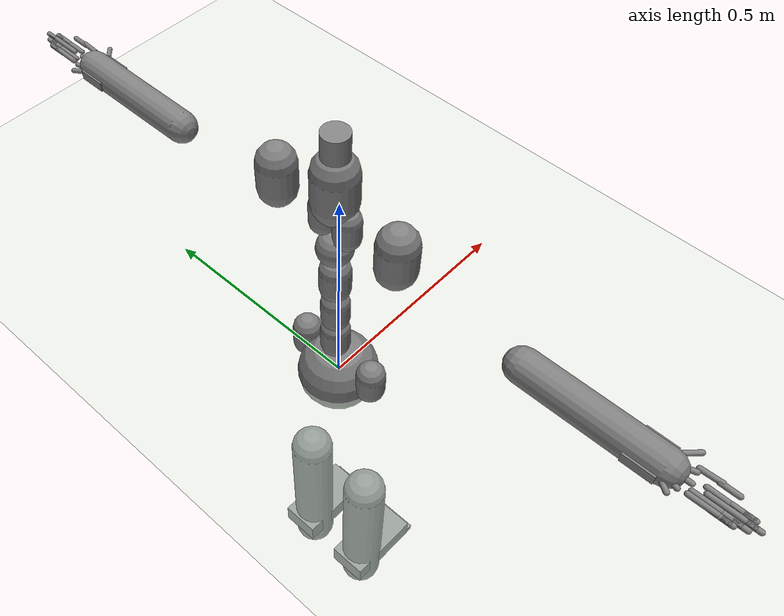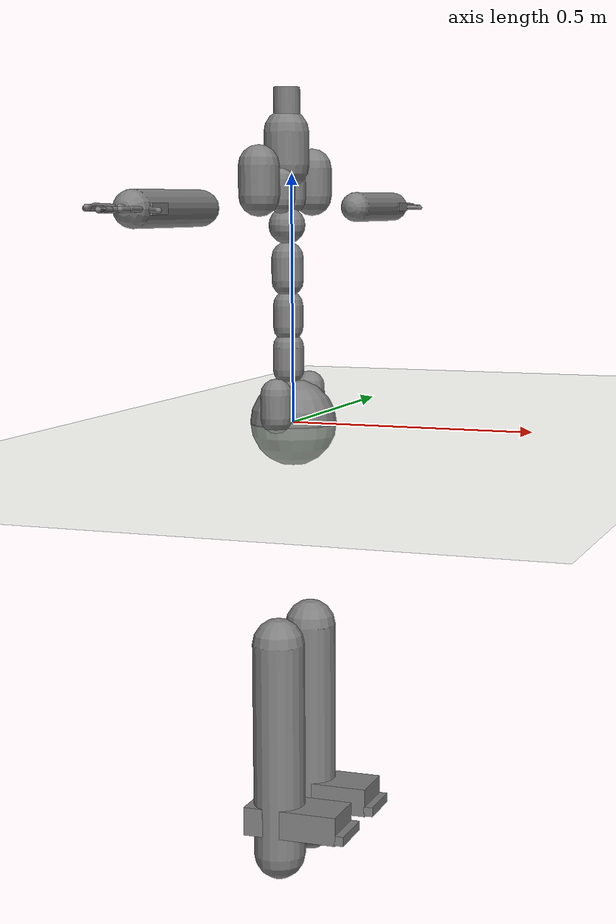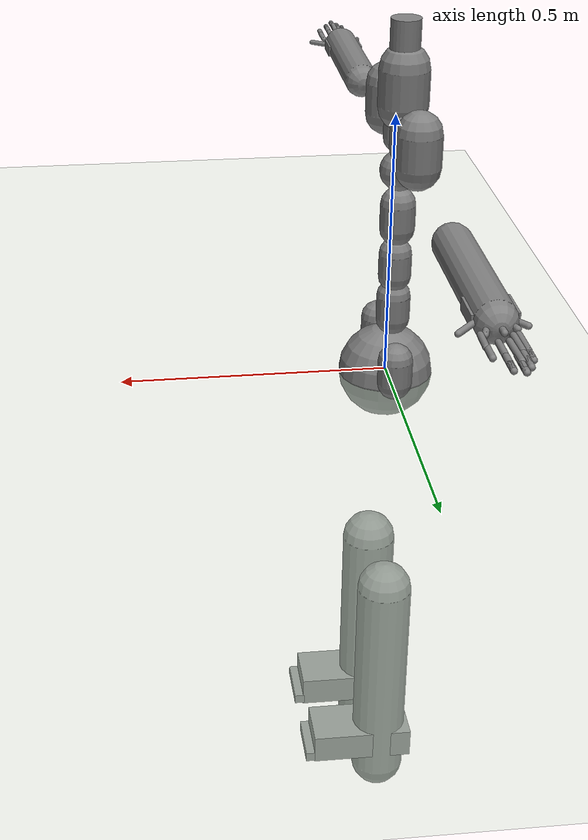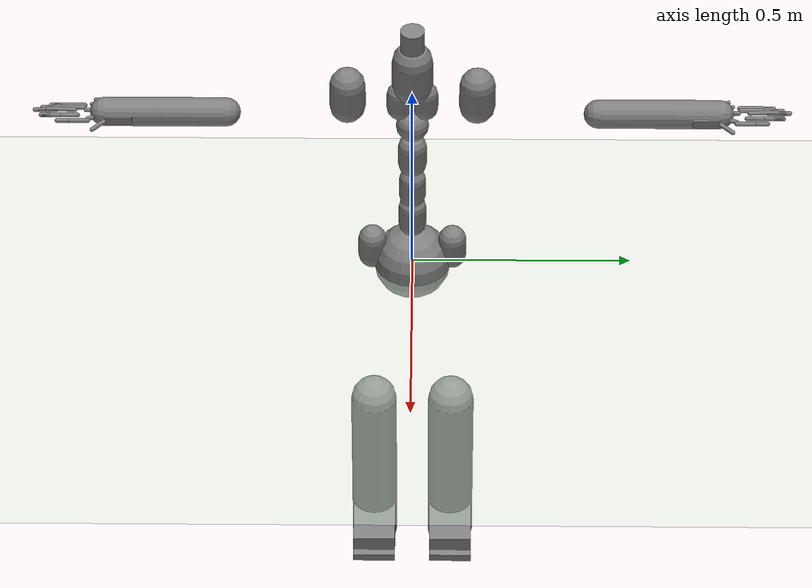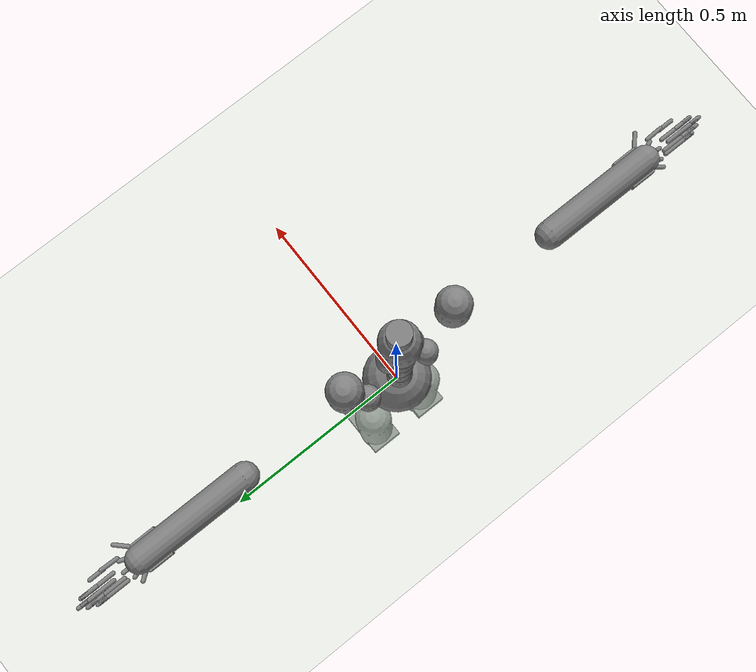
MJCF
<?xml version="1.0" ?>
<mujoco model="humanoid">
  <compiler coordinate="local"/>
  <statistic extent="2" center="0 0 1"/>
  <option timestep="0.00555"/>
  <default>
    <motor ctrlrange="-1 1" ctrllimited="true"/>
    <geom type="capsule" condim="1" friction="1.0 0.05 0.05" solimp=".9 .99 .003" solref=".015 1"/>
    <joint type="hinge" damping="0.1" stiffness="5" armature=".007" limited="true" solimplimit="0 .99 .01"/>
    <site size=".04" group="3"/>
  </default>
  <asset>
    <texture type="skybox" builtin="gradient" rgb1=".4 .5 .6" rgb2="0 0 0" width="100" height="100"/>
    <texture builtin="flat" height="1278" mark="cross" markrgb="1 1 1" name="texgeom" random="0.01" rgb1="0.8 0.6 0.4" rgb2="0.8 0.6 0.4" type="cube" width="127"/>
    <texture builtin="checker" height="100" name="texplane" rgb1="0 0 0" rgb2="0.8 0.8 0.8" type="2d" width="100"/>
    <material name="MatPlane" reflectance="0.5" shininess="1" specular="1" texrepeat="60 60" texture="texplane"/>
    <material name="geom" texture="texgeom" texuniform="true"/>
  </asset>
  <worldbody>
    <light cutoff="100" diffuse="1 1 1" dir="-0 0 -1.3" directional="true" exponent="1" pos="0 0 1.3" specular=".1 .1 .1"/>
    <geom conaffinity="1" condim="3" name="floor" pos="0 0 0" rgba="0.8 0.9 0.8 1" size="100 100 .2" type="plane" material="MatPlane"/>
    <body name="pHipOrigin" pos="0 0 0">
      <freejoint name="pHipOrigin"/>
      <geom type="sphere" contype="1" conaffinity="1" density="4629.6296296296305" size="0.08836" pos="0.0000 0.0000 -0.0000"/>
      <body name="jL5S1" pos="-0.00995742 0 0.08961650">
        <geom type="capsule" contype="1" conaffinity="1" density="1000" fromto="0 0 0.01803 0 0 0.06312" size="0.03156"/>
        <joint name="jL5S1_x" type="hinge" pos="0 0 0" axis="1 0 0" stiffness="500" damping="500" armature="0.02" range="-180.0000 180.0000"/>
        <joint name="jL5S1_y" type="hinge" pos="0 0 0" axis="0 1 0" stiffness="500" damping="500" armature="0.02" range="-180.0000 180.0000"/>
        <joint name="jL5S1_z" type="hinge" pos="0 0 0" axis="0 0 1" stiffness="500" damping="500" armature="0.02" range="-180.0000 180.0000"/>
        <body name="jL4L3" pos="0 0 0.08688753">
          <geom type="capsule" contype="1" conaffinity="1" density="1000" fromto="0 0 0.01738 0 0 0.06082" size="0.03041"/>
          <joint name="jL4L3_x" type="hinge" pos="0 0 0" axis="1 0 0" stiffness="500" damping="500" armature="0.02" range="-180.0000 180.0000"/>
          <joint name="jL4L3_y" type="hinge" pos="0 0 0" axis="0 1 0" stiffness="500" damping="500" armature="0.02" range="-180.0000 180.0000"/>
          <joint name="jL4L3_z" type="hinge" pos="0 0 0" axis="0 0 1" stiffness="500" damping="500" armature="0.02" range="-180.0000 180.0000"/>
          <body name="jL1T12" pos="-0.00071179 0 0.09226121">
            <geom type="capsule" contype="1" conaffinity="1" density="1000" fromto="0 0 0.01845 0 0 0.06458" size="0.03229"/>
            <joint name="jL1T12_x" type="hinge" pos="0 0 0" axis="1 0 0" stiffness="500" damping="500" armature="0.02" range="-180.0000 180.0000"/>
            <joint name="jL1T12_y" type="hinge" pos="0 0 0" axis="0 1 0" stiffness="500" damping="500" armature="0.02" range="-180.0000 180.0000"/>
            <joint name="jL1T12_z" type="hinge" pos="0 0 0" axis="0 0 1" stiffness="500" damping="500" armature="0.02" range="-180.0000 180.0000"/>
            <body name="jT9T8" pos="-0.00071162 0 0.09205923">
              <geom type="sphere" contype="1" conaffinity="1" density="1000" size="0.03682" pos="0.000 0.0000 0.036825"/>
              <joint name="jT9T8_x" type="hinge" pos="0 0 0" axis="1 0 0" stiffness="500" damping="500" armature="0.02" range="-180.0000 180.0000"/>
              <joint name="jT9T8_y" type="hinge" pos="0 0 0" axis="0 1 0" stiffness="500" damping="500" armature="0.02" range="-180.0000 180.0000"/>
              <joint name="jT9T8_z" type="hinge" pos="0 0 0" axis="0 0 1" stiffness="500" damping="500" armature="0.02" range="-180.0000 180.0000"/>
              <body name="jT1C7" pos="0 0 0.12971902">
                <geom type="capsule" contype="1" conaffinity="1" density="1000" fromto="0 0 0.02594 0 0 0.09080" size="0.04540"/>
                <joint name="jT1C7_x" type="hinge" pos="0 0 0" axis="1 0 0" stiffness="500" damping="500" armature="0.02" range="-180.0000 180.0000"/>
                <joint name="jT1C7_y" type="hinge" pos="0 0 0" axis="0 1 0" stiffness="500" damping="500" armature="0.02" range="-180.0000 180.0000"/>
                <joint name="jT1C7_z" type="hinge" pos="0 0 0" axis="0 0 1" stiffness="500" damping="500" armature="0.02" range="-180.0000 180.0000"/>
                <body name="jC1Head" pos="0.00105256 0 0.08921773">
                  <geom type="cylinder" contype="1" conaffinity="1" density="1000" fromto="0 0 0 0 0 0.08922" size="0.02677"/>
                  <joint name="jC1Head_x" type="hinge" pos="0 0 0" axis="1 0 0" stiffness="500" damping="500" armature="0.02" range="-180.0000 180.0000"/>
                  <joint name="jC1Head_y" type="hinge" pos="0 0 0" axis="0 1 0" stiffness="500" damping="500" armature="0.02" range="-180.0000 180.0000"/>
                  <joint name="jC1Head_z" type="hinge" pos="0 0 0" axis="0 0 1" stiffness="500" damping="500" armature="0.02" range="-180.0000 180.0000"/>
                </body>
              </body>
              <body name="jRightT4Shoulder" pos="0 -0.02967497 0.07235408">
                <geom type="capsule" contype="1" conaffinity="1" density="1000" fromto="0 0 0.01564 0 0 0.05474" size="0.02737"/>
                <joint name="jRightT4Shoulder_x" type="hinge" pos="0 0 0" axis="1 0 0" stiffness="500" damping="500" armature="0.02" range="-180.0000 180.0000"/>
                <joint name="jRightT4Shoulder_y" type="hinge" pos="0 0 0" axis="0 1 0" stiffness="500" damping="500" armature="0.02" range="-180.0000 180.0000"/>
                <joint name="jRightT4Shoulder_z" type="hinge" pos="0 0 0" axis="0 0 1" stiffness="500" damping="500" armature="0.02" range="-180.0000 180.0000"/>
                <body name="jRightShoulder" pos="0 -0.11446586 0">
                  <geom type="capsule" contype="1" conaffinity="1" density="1000" fromto="0 0 0.02289 0 0 0.08013" size="0.04006"/>
                  <joint name="jRightShoulder_x" type="hinge" pos="0 0 0" axis="1 0 0" stiffness="500" damping="500" armature="0.02" range="-180.0000 180.0000"/>
                  <joint name="jRightShoulder_y" type="hinge" pos="0 0 0" axis="0 1 0" stiffness="500" damping="500" armature="0.02" range="-180.0000 180.0000"/>
                  <joint name="jRightShoulder_z" type="hinge" pos="0 0 0" axis="0 0 1" stiffness="500" damping="500" armature="0.02" range="-180.0000 180.0000"/>
                  <body name="jRightElbow" pos="0 -0.27079919 0">
                    <geom type="capsule" contype="1" conaffinity="1" density="1000" fromto="0 0 0 0.00000000 -0.27079919 0.00000000" size="0.03250"/>
                    <joint name="jRightElbow_x" type="hinge" pos="0 0 0" axis="1 0 0" stiffness="500" damping="500" armature="0.02" range="-180.0000 180.0000"/>
                    <joint name="jRightElbow_y" type="hinge" pos="0 0 0" axis="0 1 0" stiffness="500" damping="500" armature="0.02" range="-180.0000 180.0000"/>
                    <joint name="jRightElbow_z" type="hinge" pos="0 0 0" axis="0 0 1" stiffness="500" damping="500" armature="0.02" range="-180.0000 180.0000"/>
                    <body name="jRightWrist" pos="0.00009590 -0.23827029 0">
                      <geom density="1000" type="box" pos="0 0 0" size="0.035 0.03 0.01" quat="1.0000 0.0000 0.0000 0.0000"/>
                      <joint name="jRightWrist_x" type="hinge" pos="0 0 0" axis="1 0 0" stiffness="500" damping="500" armature="0.02" range="-180.0000 180.0000"/>
                      <joint name="jRightWrist_y" type="hinge" pos="0 0 0" axis="0 1 0" stiffness="500" damping="500" armature="0.02" range="-180.0000 180.0000"/>
                      <joint name="jRightWrist_z" type="hinge" pos="0 0 0" axis="0 0 1" stiffness="500" damping="500" armature="0.02" range="-180.0000 180.0000"/>
                      <body name="jRightFirstCMC" pos="0.02974638 -0.02851357 -0.00134710">
                        <geom type="capsule" contype="1" conaffinity="1" density="1000" fromto="0 0 0 0.02974638 -0.02851357 -0.00134710" size="0.005"/>
                        <joint name="jRightFirstCMC_x" type="hinge" pos="0 0 0" axis="1 0 0" stiffness="500" damping="500" armature="0.02" range="-180.0000 180.0000"/>
                        <joint name="jRightFirstCMC_y" type="hinge" pos="0 0 0" axis="0 1 0" stiffness="500" damping="500" armature="0.02" range="-180.0000 180.0000"/>
                        <joint name="jRightFirstCMC_z" type="hinge" pos="0 0 0" axis="0 0 1" stiffness="500" damping="500" armature="0.02" range="-180.0000 180.0000"/>
                        <body name="jRightFirstMCP" pos="0.00139031 -0.03923361 0.00082900">
                          <geom type="capsule" contype="1" conaffinity="1" density="1000" fromto="0 0 0 0.00139031 -0.03923361 0.00082900" size="0.005"/>
                          <joint name="jRightFirstMCP_x" type="hinge" pos="0 0 0" axis="1 0 0" stiffness="500" damping="500" armature="0.02" range="-180.0000 180.0000"/>
                          <joint name="jRightFirstMCP_y" type="hinge" pos="0 0 0" axis="0 1 0" stiffness="500" damping="500" armature="0.02" range="-180.0000 180.0000"/>
                          <joint name="jRightFirstMCP_z" type="hinge" pos="0 0 0" axis="0 0 1" stiffness="500" damping="500" armature="0.02" range="-180.0000 180.0000"/>
                          <body name="jRightIP" pos="0 -0.03438817 0">
                            <geom type="capsule" contype="1" conaffinity="1" density="1000" fromto="0 0 0 0.00000000 -0.03438817 0.00000000" size="0.005"/>
                            <joint name="jRightIP_x" type="hinge" pos="0 0 0" axis="1 0 0" stiffness="500" damping="500" armature="0.02" range="-180.0000 180.0000"/>
                            <joint name="jRightIP_y" type="hinge" pos="0 0 0" axis="0 1 0" stiffness="500" damping="500" armature="0.02" range="-180.0000 180.0000"/>
                            <joint name="jRightIP_z" type="hinge" pos="0 0 0" axis="0 0 1" stiffness="500" damping="500" armature="0.02" range="-180.0000 180.0000"/>
                          </body>
                        </body>
                      </body>
                      <body name="jRightSecondCMC" pos="0.01179211 -0.03445281 -0.00060094">
                        <geom type="capsule" contype="1" conaffinity="1" density="1000" fromto="0 0 0 0.01179211 -0.03445281 -0.00060094" size="0.005"/>
                        <joint name="jRightSecondCMC_x" type="hinge" pos="0 0 0" axis="1 0 0" stiffness="500" damping="500" armature="0.02" range="-180.0000 180.0000"/>
                        <joint name="jRightSecondCMC_y" type="hinge" pos="0 0 0" axis="0 1 0" stiffness="500" damping="500" armature="0.02" range="-180.0000 180.0000"/>
                        <joint name="jRightSecondCMC_z" type="hinge" pos="0 0 0" axis="0 0 1" stiffness="500" damping="500" armature="0.02" range="-180.0000 180.0000"/>
                        <body name="jRightSecondMCP" pos="-0.00036057 -0.05750874 -0.00059656">
                          <geom type="capsule" contype="1" conaffinity="1" density="1000" fromto="0 0 0 -0.00036057 -0.05750874 -0.00059656" size="0.005"/>
                          <joint name="jRightSecondMCP_x" type="hinge" pos="0 0 0" axis="1 0 0" stiffness="500" damping="500" armature="0.02" range="-180.0000 180.0000"/>
                          <joint name="jRightSecondMCP_y" type="hinge" pos="0 0 0" axis="0 1 0" stiffness="500" damping="500" armature="0.02" range="-180.0000 180.0000"/>
                          <joint name="jRightSecondMCP_z" type="hinge" pos="0 0 0" axis="0 0 1" stiffness="500" damping="500" armature="0.02" range="-180.0000 180.0000"/>
                          <body name="jRightSecondPIP" pos="0 -0.04030344 0">
                            <geom type="capsule" contype="1" conaffinity="1" density="1000" fromto="0 0 0 0.00000000 -0.04030344 0.00000000" size="0.005"/>
                            <joint name="jRightSecondPIP_x" type="hinge" pos="0 0 0" axis="1 0 0" stiffness="500" damping="500" armature="0.02" range="-180.0000 180.0000"/>
                            <joint name="jRightSecondPIP_y" type="hinge" pos="0 0 0" axis="0 1 0" stiffness="500" damping="500" armature="0.02" range="-180.0000 180.0000"/>
                            <joint name="jRightSecondPIP_z" type="hinge" pos="0 0 0" axis="0 0 1" stiffness="500" damping="500" armature="0.02" range="-180.0000 180.0000"/>
                            <body name="jRightSecondDIP" pos="0 -0.02056482 0">
                              <geom type="capsule" contype="1" conaffinity="1" density="1000" fromto="0 0 0 0.00000000 -0.02056482 0.00000000" size="0.005"/>
                              <joint name="jRightSecondDIP_x" type="hinge" pos="0 0 0" axis="1 0 0" stiffness="500" damping="500" armature="0.02" range="-180.0000 180.0000"/>
                              <joint name="jRightSecondDIP_y" type="hinge" pos="0 0 0" axis="0 1 0" stiffness="500" damping="500" armature="0.02" range="-180.0000 180.0000"/>
                              <joint name="jRightSecondDIP_z" type="hinge" pos="0 0 0" axis="0 0 1" stiffness="500" damping="500" armature="0.02" range="-180.0000 180.0000"/>
                            </body>
                          </body>
                        </body>
                      </body>
                      <body name="jRightThirdCMC" pos="-0.00068244 -0.03690493 0.00155154">
                        <geom type="capsule" contype="1" conaffinity="1" density="1000" fromto="0 0 0 -0.00068244 -0.03690493 0.00155154" size="0.005"/>
                        <joint name="jRightThirdCMC_x" type="hinge" pos="0 0 0" axis="1 0 0" stiffness="500" damping="500" armature="0.02" range="-180.0000 180.0000"/>
                        <joint name="jRightThirdCMC_y" type="hinge" pos="0 0 0" axis="0 1 0" stiffness="500" damping="500" armature="0.02" range="-180.0000 180.0000"/>
                        <joint name="jRightThirdCMC_z" type="hinge" pos="0 0 0" axis="0 0 1" stiffness="500" damping="500" armature="0.02" range="-180.0000 180.0000"/>
                        <body name="jRightThirdMCP" pos="-0.00074273 -0.06153558 0.00167415">
                          <geom type="capsule" contype="1" conaffinity="1" density="1000" fromto="0 0 0 -0.00074273 -0.06153558 0.00167415" size="0.005"/>
                          <joint name="jRightThirdMCP_x" type="hinge" pos="0 0 0" axis="1 0 0" stiffness="500" damping="500" armature="0.02" range="-180.0000 180.0000"/>
                          <joint name="jRightThirdMCP_y" type="hinge" pos="0 0 0" axis="0 1 0" stiffness="500" damping="500" armature="0.02" range="-180.0000 180.0000"/>
                          <joint name="jRightThirdMCP_z" type="hinge" pos="0 0 0" axis="0 0 1" stiffness="500" damping="500" armature="0.02" range="-180.0000 180.0000"/>
                          <body name="jRightThirdPIP" pos="0 -0.04072758 0">
                            <geom type="capsule" contype="1" conaffinity="1" density="1000" fromto="0 0 0 0.00000000 -0.04072758 0.00000000" size="0.005"/>
                            <joint name="jRightThirdPIP_x" type="hinge" pos="0 0 0" axis="1 0 0" stiffness="500" damping="500" armature="0.02" range="-180.0000 180.0000"/>
                            <joint name="jRightThirdPIP_y" type="hinge" pos="0 0 0" axis="0 1 0" stiffness="500" damping="500" armature="0.02" range="-180.0000 180.0000"/>
                            <joint name="jRightThirdPIP_z" type="hinge" pos="0 0 0" axis="0 0 1" stiffness="500" damping="500" armature="0.02" range="-180.0000 180.0000"/>
                            <body name="jRightThirdDIP" pos="0 -0.02407882 0">
                              <geom type="capsule" contype="1" conaffinity="1" density="1000" fromto="0 0 0 0.00000000 -0.02407882 0.00000000" size="0.005"/>
                              <joint name="jRightThirdDIP_x" type="hinge" pos="0 0 0" axis="1 0 0" stiffness="500" damping="500" armature="0.02" range="-180.0000 180.0000"/>
                              <joint name="jRightThirdDIP_y" type="hinge" pos="0 0 0" axis="0 1 0" stiffness="500" damping="500" armature="0.02" range="-180.0000 180.0000"/>
                              <joint name="jRightThirdDIP_z" type="hinge" pos="0 0 0" axis="0 0 1" stiffness="500" damping="500" armature="0.02" range="-180.0000 180.0000"/>
                            </body>
                          </body>
                        </body>
                      </body>
                      <body name="jRightFourthCMC" pos="-0.01104868 -0.03077240 0.00072433">
                        <geom type="capsule" contype="1" conaffinity="1" density="1000" fromto="0 0 0 -0.01104868 -0.03077240 0.00072433" size="0.005"/>
                        <joint name="jRightFourthCMC_x" type="hinge" pos="0 0 0" axis="1 0 0" stiffness="500" damping="500" armature="0.02" range="-180.0000 180.0000"/>
                        <joint name="jRightFourthCMC_y" type="hinge" pos="0 0 0" axis="0 1 0" stiffness="500" damping="500" armature="0.02" range="-180.0000 180.0000"/>
                        <joint name="jRightFourthCMC_z" type="hinge" pos="0 0 0" axis="0 0 1" stiffness="500" damping="500" armature="0.02" range="-180.0000 180.0000"/>
                        <body name="jRightFourthMCP" pos="-0.00035380 -0.04849223 0.00076185">
                          <geom type="capsule" contype="1" conaffinity="1" density="1000" fromto="0 0 0 -0.00035380 -0.04849223 0.00076185" size="0.005"/>
                          <joint name="jRightFourthMCP_x" type="hinge" pos="0 0 0" axis="1 0 0" stiffness="500" damping="500" armature="0.02" range="-180.0000 180.0000"/>
                          <joint name="jRightFourthMCP_y" type="hinge" pos="0 0 0" axis="0 1 0" stiffness="500" damping="500" armature="0.02" range="-180.0000 180.0000"/>
                          <joint name="jRightFourthMCP_z" type="hinge" pos="0 0 0" axis="0 0 1" stiffness="500" damping="500" armature="0.02" range="-180.0000 180.0000"/>
                          <body name="jRightFourthPIP" pos="0 -0.04152629 0">
                            <geom type="capsule" contype="1" conaffinity="1" density="1000" fromto="0 0 0 0.00000000 -0.04152629 0.00000000" size="0.005"/>
                            <joint name="jRightFourthPIP_x" type="hinge" pos="0 0 0" axis="1 0 0" stiffness="500" damping="500" armature="0.02" range="-180.0000 180.0000"/>
                            <joint name="jRightFourthPIP_y" type="hinge" pos="0 0 0" axis="0 1 0" stiffness="500" damping="500" armature="0.02" range="-180.0000 180.0000"/>
                            <joint name="jRightFourthPIP_z" type="hinge" pos="0 0 0" axis="0 0 1" stiffness="500" damping="500" armature="0.02" range="-180.0000 180.0000"/>
                            <body name="jRightFourthDIP" pos="0 -0.02554756 0">
                              <geom type="capsule" contype="1" conaffinity="1" density="1000" fromto="0 0 0 0.00000000 -0.02554756 0.00000000" size="0.005"/>
                              <joint name="jRightFourthDIP_x" type="hinge" pos="0 0 0" axis="1 0 0" stiffness="500" damping="500" armature="0.02" range="-180.0000 180.0000"/>
                              <joint name="jRightFourthDIP_y" type="hinge" pos="0 0 0" axis="0 1 0" stiffness="500" damping="500" armature="0.02" range="-180.0000 180.0000"/>
                              <joint name="jRightFourthDIP_z" type="hinge" pos="0 0 0" axis="0 0 1" stiffness="500" damping="500" armature="0.02" range="-180.0000 180.0000"/>
                            </body>
                          </body>
                        </body>
                      </body>
                      <body name="jRightFifthCMC" pos="-0.01929054 -0.02687916 0.00053024">
                        <geom type="capsule" contype="1" conaffinity="1" density="1000" fromto="0 0 0 -0.01929054 -0.02687916 0.00053024" size="0.005"/>
                        <joint name="jRightFifthCMC_x" type="hinge" pos="0 0 0" axis="1 0 0" stiffness="500" damping="500" armature="0.02" range="-180.0000 180.0000"/>
                        <joint name="jRightFifthCMC_y" type="hinge" pos="0 0 0" axis="0 1 0" stiffness="500" damping="500" armature="0.02" range="-180.0000 180.0000"/>
                        <joint name="jRightFifthCMC_z" type="hinge" pos="0 0 0" axis="0 0 1" stiffness="500" damping="500" armature="0.02" range="-180.0000 180.0000"/>
                        <body name="jRightFifthMCP" pos="-0.00000743 -0.05032826 0.00069258">
                          <geom type="capsule" contype="1" conaffinity="1" density="1000" fromto="0 0 0 -0.00000743 -0.05032826 0.00069258" size="0.005"/>
                          <joint name="jRightFifthMCP_x" type="hinge" pos="0 0 0" axis="1 0 0" stiffness="500" damping="500" armature="0.02" range="-180.0000 180.0000"/>
                          <joint name="jRightFifthMCP_y" type="hinge" pos="0 0 0" axis="0 1 0" stiffness="500" damping="500" armature="0.02" range="-180.0000 180.0000"/>
                          <joint name="jRightFifthMCP_z" type="hinge" pos="0 0 0" axis="0 0 1" stiffness="500" damping="500" armature="0.02" range="-180.0000 180.0000"/>
                          <body name="jRightFifthPIP" pos="0 -0.03611794 0">
                            <geom type="capsule" contype="1" conaffinity="1" density="1000" fromto="0 0 0 0.00000000 -0.03611794 0.00000000" size="0.005"/>
                            <joint name="jRightFifthPIP_x" type="hinge" pos="0 0 0" axis="1 0 0" stiffness="500" damping="500" armature="0.02" range="-180.0000 180.0000"/>
                            <joint name="jRightFifthPIP_y" type="hinge" pos="0 0 0" axis="0 1 0" stiffness="500" damping="500" armature="0.02" range="-180.0000 180.0000"/>
                            <joint name="jRightFifthPIP_z" type="hinge" pos="0 0 0" axis="0 0 1" stiffness="500" damping="500" armature="0.02" range="-180.0000 180.0000"/>
                            <body name="jRightFifthDIP" pos="0 -0.01958215 0">
                              <geom type="capsule" contype="1" conaffinity="1" density="1000" fromto="0 0 0 0.00000000 -0.01958215 0.00000000" size="0.005"/>
                              <joint name="jRightFifthDIP_x" type="hinge" pos="0 0 0" axis="1 0 0" stiffness="500" damping="500" armature="0.02" range="-180.0000 180.0000"/>
                              <joint name="jRightFifthDIP_y" type="hinge" pos="0 0 0" axis="0 1 0" stiffness="500" damping="500" armature="0.02" range="-180.0000 180.0000"/>
                              <joint name="jRightFifthDIP_z" type="hinge" pos="0 0 0" axis="0 0 1" stiffness="500" damping="500" armature="0.02" range="-180.0000 180.0000"/>
                            </body>
                          </body>
                        </body>
                      </body>
                    </body>
                  </body>
                </body>
              </body>
              <body name="jLeftT4Shoulder" pos="0 0.02961454 0.07220674">
                <geom type="capsule" contype="1" conaffinity="1" density="1000" fromto="0 0 0.01561 0 0 0.05463" size="0.02732"/>
                <joint name="jLeftT4Shoulder_x" type="hinge" pos="0 0 0" axis="1 0 0" stiffness="500" damping="500" armature="0.02" range="-180.0000 180.0000"/>
                <joint name="jLeftT4Shoulder_y" type="hinge" pos="0 0 0" axis="0 1 0" stiffness="500" damping="500" armature="0.02" range="-180.0000 180.0000"/>
                <joint name="jLeftT4Shoulder_z" type="hinge" pos="0 0 0" axis="0 0 1" stiffness="500" damping="500" armature="0.02" range="-180.0000 180.0000"/>
                <body name="jLeftShoulder" pos="0 0.11448031 0">
                  <geom type="capsule" contype="1" conaffinity="1" density="1000" fromto="0 0 0.02290 0 0 0.08014" size="0.04007"/>
                  <joint name="jLeftShoulder_x" type="hinge" pos="0 0 0" axis="1 0 0" stiffness="500" damping="500" armature="0.02" range="-180.0000 180.0000"/>
                  <joint name="jLeftShoulder_y" type="hinge" pos="0 0 0" axis="0 1 0" stiffness="500" damping="500" armature="0.02" range="-180.0000 180.0000"/>
                  <joint name="jLeftShoulder_z" type="hinge" pos="0 0 0" axis="0 0 1" stiffness="500" damping="500" armature="0.02" range="-180.0000 180.0000"/>
                  <body name="jLeftElbow" pos="0 0.26960337 0">
                    <geom type="capsule" contype="1" conaffinity="1" density="1000" fromto="0 0 0 0.00000000 0.26960337 0.00000000" size="0.03235"/>
                    <joint name="jLeftElbow_x" type="hinge" pos="0 0 0" axis="1 0 0" stiffness="500" damping="500" armature="0.02" range="-180.0000 180.0000"/>
                    <joint name="jLeftElbow_y" type="hinge" pos="0 0 0" axis="0 1 0" stiffness="500" damping="500" armature="0.02" range="-180.0000 180.0000"/>
                    <joint name="jLeftElbow_z" type="hinge" pos="0 0 0" axis="0 0 1" stiffness="500" damping="500" armature="0.02" range="-180.0000 180.0000"/>
                    <body name="jLeftWrist" pos="0.00009599 0.23849774 0">
                      <geom density="1000" type="box" pos="0 0 0" size="0.035 0.03 0.01" quat="1.0000 0.0000 0.0000 0.0000"/>
                      <joint name="jLeftWrist_x" type="hinge" pos="0 0 0" axis="1 0 0" stiffness="500" damping="500" armature="0.02" range="-180.0000 180.0000"/>
                      <joint name="jLeftWrist_y" type="hinge" pos="0 0 0" axis="0 1 0" stiffness="500" damping="500" armature="0.02" range="-180.0000 180.0000"/>
                      <joint name="jLeftWrist_z" type="hinge" pos="0 0 0" axis="0 0 1" stiffness="500" damping="500" armature="0.02" range="-180.0000 180.0000"/>
                      <body name="jLeftFirstCMC" pos="0.02911470 0.02918346 -0.00130308">
                        <geom type="capsule" contype="1" conaffinity="1" density="1000" fromto="0 0 0 0.02911470 0.02918346 -0.00130308" size="0.005"/>
                        <joint name="jLeftFirstCMC_x" type="hinge" pos="0 0 0" axis="1 0 0" stiffness="500" damping="500" armature="0.02" range="-180.0000 180.0000"/>
                        <joint name="jLeftFirstCMC_y" type="hinge" pos="0 0 0" axis="0 1 0" stiffness="500" damping="500" armature="0.02" range="-180.0000 180.0000"/>
                        <joint name="jLeftFirstCMC_z" type="hinge" pos="0 0 0" axis="0 0 1" stiffness="500" damping="500" armature="0.02" range="-180.0000 180.0000"/>
                        <body name="jLeftFirstMCP" pos="0.00137692 0.03923272 0.00080790">
                          <geom type="capsule" contype="1" conaffinity="1" density="1000" fromto="0 0 0 0.00137692 0.03923272 0.00080790" size="0.005"/>
                          <joint name="jLeftFirstMCP_x" type="hinge" pos="0 0 0" axis="1 0 0" stiffness="500" damping="500" armature="0.02" range="-180.0000 180.0000"/>
                          <joint name="jLeftFirstMCP_y" type="hinge" pos="0 0 0" axis="0 1 0" stiffness="500" damping="500" armature="0.02" range="-180.0000 180.0000"/>
                          <joint name="jLeftFirstMCP_z" type="hinge" pos="0 0 0" axis="0 0 1" stiffness="500" damping="500" armature="0.02" range="-180.0000 180.0000"/>
                          <body name="jLeftIP" pos="0 0.03438817 0">
                            <geom type="capsule" contype="1" conaffinity="1" density="1000" fromto="0 0 0 0.00000000 0.03438817 0.00000000" size="0.005"/>
                            <joint name="jLeftIP_x" type="hinge" pos="0 0 0" axis="1 0 0" stiffness="500" damping="500" armature="0.02" range="-180.0000 180.0000"/>
                            <joint name="jLeftIP_y" type="hinge" pos="0 0 0" axis="0 1 0" stiffness="500" damping="500" armature="0.02" range="-180.0000 180.0000"/>
                            <joint name="jLeftIP_z" type="hinge" pos="0 0 0" axis="0 0 1" stiffness="500" damping="500" armature="0.02" range="-180.0000 180.0000"/>
                          </body>
                        </body>
                      </body>
                      <body name="jLeftSecondCMC" pos="0.01192793 0.03438941 -0.00060590">
                        <geom type="capsule" contype="1" conaffinity="1" density="1000" fromto="0 0 0 0.01192793 0.03438941 -0.00060590" size="0.005"/>
                        <joint name="jLeftSecondCMC_x" type="hinge" pos="0 0 0" axis="1 0 0" stiffness="500" damping="500" armature="0.02" range="-180.0000 180.0000"/>
                        <joint name="jLeftSecondCMC_y" type="hinge" pos="0 0 0" axis="0 1 0" stiffness="500" damping="500" armature="0.02" range="-180.0000 180.0000"/>
                        <joint name="jLeftSecondCMC_z" type="hinge" pos="0 0 0" axis="0 0 1" stiffness="500" damping="500" armature="0.02" range="-180.0000 180.0000"/>
                        <body name="jLeftSecondMCP" pos="-0.00031440 0.05750992 -0.00060393">
                          <geom type="capsule" contype="1" conaffinity="1" density="1000" fromto="0 0 0 -0.00031440 0.05750992 -0.00060393" size="0.005"/>
                          <joint name="jLeftSecondMCP_x" type="hinge" pos="0 0 0" axis="1 0 0" stiffness="500" damping="500" armature="0.02" range="-180.0000 180.0000"/>
                          <joint name="jLeftSecondMCP_y" type="hinge" pos="0 0 0" axis="0 1 0" stiffness="500" damping="500" armature="0.02" range="-180.0000 180.0000"/>
                          <joint name="jLeftSecondMCP_z" type="hinge" pos="0 0 0" axis="0 0 1" stiffness="500" damping="500" armature="0.02" range="-180.0000 180.0000"/>
                          <body name="jLeftSecondPIP" pos="0 0.04030344 0">
                            <geom type="capsule" contype="1" conaffinity="1" density="1000" fromto="0 0 0 0.00000000 0.04030344 0.00000000" size="0.005"/>
                            <joint name="jLeftSecondPIP_x" type="hinge" pos="0 0 0" axis="1 0 0" stiffness="500" damping="500" armature="0.02" range="-180.0000 180.0000"/>
                            <joint name="jLeftSecondPIP_y" type="hinge" pos="0 0 0" axis="0 1 0" stiffness="500" damping="500" armature="0.02" range="-180.0000 180.0000"/>
                            <joint name="jLeftSecondPIP_z" type="hinge" pos="0 0 0" axis="0 0 1" stiffness="500" damping="500" armature="0.02" range="-180.0000 180.0000"/>
                            <body name="jLeftSecondDIP" pos="0 0.02056482 0">
                              <geom type="capsule" contype="1" conaffinity="1" density="1000" fromto="0 0 0 0.00000000 0.02056482 0.00000000" size="0.005"/>
                              <joint name="jLeftSecondDIP_x" type="hinge" pos="0 0 0" axis="1 0 0" stiffness="500" damping="500" armature="0.02" range="-180.0000 180.0000"/>
                              <joint name="jLeftSecondDIP_y" type="hinge" pos="0 0 0" axis="0 1 0" stiffness="500" damping="500" armature="0.02" range="-180.0000 180.0000"/>
                              <joint name="jLeftSecondDIP_z" type="hinge" pos="0 0 0" axis="0 0 1" stiffness="500" damping="500" armature="0.02" range="-180.0000 180.0000"/>
                            </body>
                          </body>
                        </body>
                      </body>
                      <body name="jLeftThirdCMC" pos="-0.00068645 0.03690825 0.00149982">
                        <geom type="capsule" contype="1" conaffinity="1" density="1000" fromto="0 0 0 -0.00068645 0.03690825 0.00149982" size="0.005"/>
                        <joint name="jLeftThirdCMC_x" type="hinge" pos="0 0 0" axis="1 0 0" stiffness="500" damping="500" armature="0.02" range="-180.0000 180.0000"/>
                        <joint name="jLeftThirdCMC_y" type="hinge" pos="0 0 0" axis="0 1 0" stiffness="500" damping="500" armature="0.02" range="-180.0000 180.0000"/>
                        <joint name="jLeftThirdCMC_z" type="hinge" pos="0 0 0" axis="0 0 1" stiffness="500" damping="500" armature="0.02" range="-180.0000 180.0000"/>
                        <body name="jLeftThirdMCP" pos="-0.00074873 0.06153677 0.00164049">
                          <geom type="capsule" contype="1" conaffinity="1" density="1000" fromto="0 0 0 -0.00074873 0.06153677 0.00164049" size="0.005"/>
                          <joint name="jLeftThirdMCP_x" type="hinge" pos="0 0 0" axis="1 0 0" stiffness="500" damping="500" armature="0.02" range="-180.0000 180.0000"/>
                          <joint name="jLeftThirdMCP_y" type="hinge" pos="0 0 0" axis="0 1 0" stiffness="500" damping="500" armature="0.02" range="-180.0000 180.0000"/>
                          <joint name="jLeftThirdMCP_z" type="hinge" pos="0 0 0" axis="0 0 1" stiffness="500" damping="500" armature="0.02" range="-180.0000 180.0000"/>
                          <body name="jLeftThirdPIP" pos="0 0.04072758 0">
                            <geom type="capsule" contype="1" conaffinity="1" density="1000" fromto="0 0 0 0.00000000 0.04072758 0.00000000" size="0.005"/>
                            <joint name="jLeftThirdPIP_x" type="hinge" pos="0 0 0" axis="1 0 0" stiffness="500" damping="500" armature="0.02" range="-180.0000 180.0000"/>
                            <joint name="jLeftThirdPIP_y" type="hinge" pos="0 0 0" axis="0 1 0" stiffness="500" damping="500" armature="0.02" range="-180.0000 180.0000"/>
                            <joint name="jLeftThirdPIP_z" type="hinge" pos="0 0 0" axis="0 0 1" stiffness="500" damping="500" armature="0.02" range="-180.0000 180.0000"/>
                            <body name="jLeftThirdDIP" pos="0 0.02407882 0">
                              <geom type="capsule" contype="1" conaffinity="1" density="1000" fromto="0 0 0 0.00000000 0.02407882 0.00000000" size="0.005"/>
                              <joint name="jLeftThirdDIP_x" type="hinge" pos="0 0 0" axis="1 0 0" stiffness="500" damping="500" armature="0.02" range="-180.0000 180.0000"/>
                              <joint name="jLeftThirdDIP_y" type="hinge" pos="0 0 0" axis="0 1 0" stiffness="500" damping="500" armature="0.02" range="-180.0000 180.0000"/>
                              <joint name="jLeftThirdDIP_z" type="hinge" pos="0 0 0" axis="0 0 1" stiffness="500" damping="500" armature="0.02" range="-180.0000 180.0000"/>
                            </body>
                          </body>
                        </body>
                      </body>
                      <body name="jLeftFourthCMC" pos="-0.01145409 0.03061500 0.00077322">
                        <geom type="capsule" contype="1" conaffinity="1" density="1000" fromto="0 0 0 -0.01145409 0.03061500 0.00077322" size="0.005"/>
                        <joint name="jLeftFourthCMC_x" type="hinge" pos="0 0 0" axis="1 0 0" stiffness="500" damping="500" armature="0.02" range="-180.0000 180.0000"/>
                        <joint name="jLeftFourthCMC_y" type="hinge" pos="0 0 0" axis="0 1 0" stiffness="500" damping="500" armature="0.02" range="-180.0000 180.0000"/>
                        <joint name="jLeftFourthCMC_z" type="hinge" pos="0 0 0" axis="0 0 1" stiffness="500" damping="500" armature="0.02" range="-180.0000 180.0000"/>
                        <body name="jLeftFourthMCP" pos="-0.00038048 0.04848945 0.00080575">
                          <geom type="capsule" contype="1" conaffinity="1" density="1000" fromto="0 0 0 -0.00038048 0.04848945 0.00080575" size="0.005"/>
                          <joint name="jLeftFourthMCP_x" type="hinge" pos="0 0 0" axis="1 0 0" stiffness="500" damping="500" armature="0.02" range="-180.0000 180.0000"/>
                          <joint name="jLeftFourthMCP_y" type="hinge" pos="0 0 0" axis="0 1 0" stiffness="500" damping="500" armature="0.02" range="-180.0000 180.0000"/>
                          <joint name="jLeftFourthMCP_z" type="hinge" pos="0 0 0" axis="0 0 1" stiffness="500" damping="500" armature="0.02" range="-180.0000 180.0000"/>
                          <body name="jLeftFourthPIP" pos="0 0.04152629 0">
                            <geom type="capsule" contype="1" conaffinity="1" density="1000" fromto="0 0 0 0.00000000 0.04152629 0.00000000" size="0.005"/>
                            <joint name="jLeftFourthPIP_x" type="hinge" pos="0 0 0" axis="1 0 0" stiffness="500" damping="500" armature="0.02" range="-180.0000 180.0000"/>
                            <joint name="jLeftFourthPIP_y" type="hinge" pos="0 0 0" axis="0 1 0" stiffness="500" damping="500" armature="0.02" range="-180.0000 180.0000"/>
                            <joint name="jLeftFourthPIP_z" type="hinge" pos="0 0 0" axis="0 0 1" stiffness="500" damping="500" armature="0.02" range="-180.0000 180.0000"/>
                            <body name="jLeftFourthDIP" pos="0 0.02554756 0">
                              <geom type="capsule" contype="1" conaffinity="1" density="1000" fromto="0 0 0 0.00000000 0.02554756 0.00000000" size="0.005"/>
                              <joint name="jLeftFourthDIP_x" type="hinge" pos="0 0 0" axis="1 0 0" stiffness="500" damping="500" armature="0.02" range="-180.0000 180.0000"/>
                              <joint name="jLeftFourthDIP_y" type="hinge" pos="0 0 0" axis="0 1 0" stiffness="500" damping="500" armature="0.02" range="-180.0000 180.0000"/>
                              <joint name="jLeftFourthDIP_z" type="hinge" pos="0 0 0" axis="0 0 1" stiffness="500" damping="500" armature="0.02" range="-180.0000 180.0000"/>
                            </body>
                          </body>
                        </body>
                      </body>
                      <body name="jLeftFifthCMC" pos="-0.01987492 0.02645423 0.00053876">
                        <geom type="capsule" contype="1" conaffinity="1" density="1000" fromto="0 0 0 -0.01987492 0.02645423 0.00053876" size="0.005"/>
                        <joint name="jLeftFifthCMC_x" type="hinge" pos="0 0 0" axis="1 0 0" stiffness="500" damping="500" armature="0.02" range="-180.0000 180.0000"/>
                        <joint name="jLeftFifthCMC_y" type="hinge" pos="0 0 0" axis="0 1 0" stiffness="500" damping="500" armature="0.02" range="-180.0000 180.0000"/>
                        <joint name="jLeftFifthCMC_z" type="hinge" pos="0 0 0" axis="0 0 1" stiffness="500" damping="500" armature="0.02" range="-180.0000 180.0000"/>
                        <body name="jLeftFifthMCP" pos="-0.00001427 0.05032688 0.00072417">
                          <geom type="capsule" contype="1" conaffinity="1" density="1000" fromto="0 0 0 -0.00001427 0.05032688 0.00072417" size="0.005"/>
                          <joint name="jLeftFifthMCP_x" type="hinge" pos="0 0 0" axis="1 0 0" stiffness="500" damping="500" armature="0.02" range="-180.0000 180.0000"/>
                          <joint name="jLeftFifthMCP_y" type="hinge" pos="0 0 0" axis="0 1 0" stiffness="500" damping="500" armature="0.02" range="-180.0000 180.0000"/>
                          <joint name="jLeftFifthMCP_z" type="hinge" pos="0 0 0" axis="0 0 1" stiffness="500" damping="500" armature="0.02" range="-180.0000 180.0000"/>
                          <body name="jLeftFifthPIP" pos="0 0.03611794 0">
                            <geom type="capsule" contype="1" conaffinity="1" density="1000" fromto="0 0 0 0.00000000 0.03611794 0.00000000" size="0.005"/>
                            <joint name="jLeftFifthPIP_x" type="hinge" pos="0 0 0" axis="1 0 0" stiffness="500" damping="500" armature="0.02" range="-180.0000 180.0000"/>
                            <joint name="jLeftFifthPIP_y" type="hinge" pos="0 0 0" axis="0 1 0" stiffness="500" damping="500" armature="0.02" range="-180.0000 180.0000"/>
                            <joint name="jLeftFifthPIP_z" type="hinge" pos="0 0 0" axis="0 0 1" stiffness="500" damping="500" armature="0.02" range="-180.0000 180.0000"/>
                            <body name="jLeftFifthDIP" pos="0 0.01958215 0">
                              <geom type="capsule" contype="1" conaffinity="1" density="1000" fromto="0 0 0 0.00000000 0.01958215 0.00000000" size="0.005"/>
                              <joint name="jLeftFifthDIP_x" type="hinge" pos="0 0 0" axis="1 0 0" stiffness="500" damping="500" armature="0.02" range="-180.0000 180.0000"/>
                              <joint name="jLeftFifthDIP_y" type="hinge" pos="0 0 0" axis="0 1 0" stiffness="500" damping="500" armature="0.02" range="-180.0000 180.0000"/>
                              <joint name="jLeftFifthDIP_z" type="hinge" pos="0 0 0" axis="0 0 1" stiffness="500" damping="500" armature="0.02" range="-180.0000 180.0000"/>
                            </body>
                          </body>
                        </body>
                      </body>
                    </body>
                  </body>
                </body>
              </body>
            </body>
          </body>
        </body>
      </body>
      <body name="jRightHip" pos="-0.00015430 -0.09157189 0.00138912">
        <geom type="capsule" contype="1" conaffinity="1" density="1000" fromto="0 0 0.01832 0 0 0.06411" size="0.03205"/>
        <joint name="jRightHip_x" type="hinge" pos="0 0 0" axis="1 0 0" stiffness="500" damping="500" armature="0.02" range="-180.0000 180.0000"/>
        <joint name="jRightHip_y" type="hinge" pos="0 0 0" axis="0 1 0" stiffness="500" damping="500" armature="0.02" range="-180.0000 180.0000"/>
        <joint name="jRightHip_z" type="hinge" pos="0 0 0" axis="0 0 1" stiffness="500" damping="500" armature="0.02" range="-180.0000 180.0000"/>
        <body name="jRightKnee" pos="0.00005326 0 -0.44671291">
          <geom type="capsule" contype="1" conaffinity="1" density="1000" fromto="0 0 0 0.00005326 0.00000000 -0.44671291" size="0.05361"/>
          <joint name="jRightKnee_x" type="hinge" pos="0 0 0" axis="1 0 0" stiffness="500" damping="500" armature="0.02" range="-180.0000 180.0000"/>
          <joint name="jRightKnee_y" type="hinge" pos="0 0 0" axis="0 1 0" stiffness="500" damping="500" armature="0.02" range="-180.0000 180.0000"/>
          <joint name="jRightKnee_z" type="hinge" pos="0 0 0" axis="0 0 1" stiffness="500" damping="500" armature="0.02" range="-180.0000 180.0000"/>
          <body name="jRightAnkle" pos="0.00038220 0 -0.33848586">
            <geom density="1000" type="box" pos="0.04 0. -0.03" size="0.1 0.05 0.03" quat="1.0 0 0 0"/>
            <joint name="jRightAnkle_x" type="hinge" pos="0 0 0" axis="1 0 0" stiffness="500" damping="500" armature="0.02" range="-180.0000 180.0000"/>
            <joint name="jRightAnkle_y" type="hinge" pos="0 0 0" axis="0 1 0" stiffness="500" damping="500" armature="0.02" range="-180.0000 180.0000"/>
            <joint name="jRightAnkle_z" type="hinge" pos="0 0 0" axis="0 0 1" stiffness="500" damping="500" armature="0.02" range="-180.0000 180.0000"/>
            <body name="jRightBallFoot" pos="0.14751508 0 -0.06767417">
              <geom density="1000" type="box" pos="0 0 0.02" size="0.01 0.05 0.01" quat="1.0 0 0 0"/>
              <joint name="jRightBallFoot_x" type="hinge" pos="0 0 0" axis="1 0 0" stiffness="500" damping="500" armature="0.02" range="-180.0000 180.0000"/>
              <joint name="jRightBallFoot_y" type="hinge" pos="0 0 0" axis="0 1 0" stiffness="500" damping="500" armature="0.02" range="-180.0000 180.0000"/>
              <joint name="jRightBallFoot_z" type="hinge" pos="0 0 0" axis="0 0 1" stiffness="500" damping="500" armature="0.02" range="-180.0000 180.0000"/>
            </body>
          </body>
        </body>
      </body>
      <body name="jLeftHip" pos="-0.00015189 0.09131691 0.00136693">
        <geom type="capsule" contype="1" conaffinity="1" density="1000" fromto="0 0 0.01827 0 0 0.06393" size="0.03196"/>
        <joint name="jLeftHip_x" type="hinge" pos="0 0 0" axis="1 0 0" stiffness="500" damping="500" armature="0.02" range="-180.0000 180.0000"/>
        <joint name="jLeftHip_y" type="hinge" pos="0 0 0" axis="0 1 0" stiffness="500" damping="500" armature="0.02" range="-180.0000 180.0000"/>
        <joint name="jLeftHip_z" type="hinge" pos="0 0 0" axis="0 0 1" stiffness="500" damping="500" armature="0.02" range="-180.0000 180.0000"/>
        <body name="jLeftKnee" pos="0.00005327 0 -0.44679701">
          <geom type="capsule" contype="1" conaffinity="1" density="1000" fromto="0 0 0 0.00005327 0.00000000 -0.44679701" size="0.05362"/>
          <joint name="jLeftKnee_x" type="hinge" pos="0 0 0" axis="1 0 0" stiffness="500" damping="500" armature="0.02" range="-180.0000 180.0000"/>
          <joint name="jLeftKnee_y" type="hinge" pos="0 0 0" axis="0 1 0" stiffness="500" damping="500" armature="0.02" range="-180.0000 180.0000"/>
          <joint name="jLeftKnee_z" type="hinge" pos="0 0 0" axis="0 0 1" stiffness="500" damping="500" armature="0.02" range="-180.0000 180.0000"/>
          <body name="jLeftAnkle" pos="0.00038220 0 -0.33848586">
            <geom density="1000" type="box" pos="0.04 0. -0.03" size="0.1 0.05 0.03" quat="1.0 0 0 0"/>
            <joint name="jLeftAnkle_x" type="hinge" pos="0 0 0" axis="1 0 0" stiffness="500" damping="500" armature="0.02" range="-180.0000 180.0000"/>
            <joint name="jLeftAnkle_y" type="hinge" pos="0 0 0" axis="0 1 0" stiffness="500" damping="500" armature="0.02" range="-180.0000 180.0000"/>
            <joint name="jLeftAnkle_z" type="hinge" pos="0 0 0" axis="0 0 1" stiffness="500" damping="500" armature="0.02" range="-180.0000 180.0000"/>
            <body name="jLeftBallFoot" pos="0.14751508 0 -0.06767417">
              <geom density="1000" type="box" pos="0 0 0.02" size="0.01 0.05 0.01" quat="1.0 0 0 0"/>
              <joint name="jLeftBallFoot_x" type="hinge" pos="0 0 0" axis="1 0 0" stiffness="500" damping="500" armature="0.02" range="-180.0000 180.0000"/>
              <joint name="jLeftBallFoot_y" type="hinge" pos="0 0 0" axis="0 1 0" stiffness="500" damping="500" armature="0.02" range="-180.0000 180.0000"/>
              <joint name="jLeftBallFoot_z" type="hinge" pos="0 0 0" axis="0 0 1" stiffness="500" damping="500" armature="0.02" range="-180.0000 180.0000"/>
            </body>
          </body>
        </body>
      </body>
    </body>
  </worldbody>
  <actuator>
    <motor name="jL5S1_x" joint="jL5S1_x" gear="500"/>
    <motor name="jL5S1_y" joint="jL5S1_y" gear="500"/>
    <motor name="jL5S1_z" joint="jL5S1_z" gear="500"/>
    <motor name="jL4L3_x" joint="jL4L3_x" gear="500"/>
    <motor name="jL4L3_y" joint="jL4L3_y" gear="500"/>
    <motor name="jL4L3_z" joint="jL4L3_z" gear="500"/>
    <motor name="jL1T12_x" joint="jL1T12_x" gear="500"/>
    <motor name="jL1T12_y" joint="jL1T12_y" gear="500"/>
    <motor name="jL1T12_z" joint="jL1T12_z" gear="500"/>
    <motor name="jT9T8_x" joint="jT9T8_x" gear="500"/>
    <motor name="jT9T8_y" joint="jT9T8_y" gear="500"/>
    <motor name="jT9T8_z" joint="jT9T8_z" gear="500"/>
    <motor name="jT1C7_x" joint="jT1C7_x" gear="500"/>
    <motor name="jT1C7_y" joint="jT1C7_y" gear="500"/>
    <motor name="jT1C7_z" joint="jT1C7_z" gear="500"/>
    <motor name="jC1Head_x" joint="jC1Head_x" gear="500"/>
    <motor name="jC1Head_y" joint="jC1Head_y" gear="500"/>
    <motor name="jC1Head_z" joint="jC1Head_z" gear="500"/>
    <motor name="jRightT4Shoulder_x" joint="jRightT4Shoulder_x" gear="500"/>
    <motor name="jRightT4Shoulder_y" joint="jRightT4Shoulder_y" gear="500"/>
    <motor name="jRightT4Shoulder_z" joint="jRightT4Shoulder_z" gear="500"/>
    <motor name="jRightShoulder_x" joint="jRightShoulder_x" gear="500"/>
    <motor name="jRightShoulder_y" joint="jRightShoulder_y" gear="500"/>
    <motor name="jRightShoulder_z" joint="jRightShoulder_z" gear="500"/>
    <motor name="jRightElbow_x" joint="jRightElbow_x" gear="500"/>
    <motor name="jRightElbow_y" joint="jRightElbow_y" gear="500"/>
    <motor name="jRightElbow_z" joint="jRightElbow_z" gear="500"/>
    <motor name="jRightWrist_x" joint="jRightWrist_x" gear="500"/>
    <motor name="jRightWrist_y" joint="jRightWrist_y" gear="500"/>
    <motor name="jRightWrist_z" joint="jRightWrist_z" gear="500"/>
    <motor name="jLeftT4Shoulder_x" joint="jLeftT4Shoulder_x" gear="500"/>
    <motor name="jLeftT4Shoulder_y" joint="jLeftT4Shoulder_y" gear="500"/>
    <motor name="jLeftT4Shoulder_z" joint="jLeftT4Shoulder_z" gear="500"/>
    <motor name="jLeftShoulder_x" joint="jLeftShoulder_x" gear="500"/>
    <motor name="jLeftShoulder_y" joint="jLeftShoulder_y" gear="500"/>
    <motor name="jLeftShoulder_z" joint="jLeftShoulder_z" gear="500"/>
    <motor name="jLeftElbow_x" joint="jLeftElbow_x" gear="500"/>
    <motor name="jLeftElbow_y" joint="jLeftElbow_y" gear="500"/>
    <motor name="jLeftElbow_z" joint="jLeftElbow_z" gear="500"/>
    <motor name="jLeftWrist_x" joint="jLeftWrist_x" gear="500"/>
    <motor name="jLeftWrist_y" joint="jLeftWrist_y" gear="500"/>
    <motor name="jLeftWrist_z" joint="jLeftWrist_z" gear="500"/>
    <motor name="jRightHip_x" joint="jRightHip_x" gear="500"/>
    <motor name="jRightHip_y" joint="jRightHip_y" gear="500"/>
    <motor name="jRightHip_z" joint="jRightHip_z" gear="500"/>
    <motor name="jRightKnee_x" joint="jRightKnee_x" gear="500"/>
    <motor name="jRightKnee_y" joint="jRightKnee_y" gear="500"/>
    <motor name="jRightKnee_z" joint="jRightKnee_z" gear="500"/>
    <motor name="jRightAnkle_x" joint="jRightAnkle_x" gear="500"/>
    <motor name="jRightAnkle_y" joint="jRightAnkle_y" gear="500"/>
    <motor name="jRightAnkle_z" joint="jRightAnkle_z" gear="500"/>
    <motor name="jRightBallFoot_x" joint="jRightBallFoot_x" gear="500"/>
    <motor name="jRightBallFoot_y" joint="jRightBallFoot_y" gear="500"/>
    <motor name="jRightBallFoot_z" joint="jRightBallFoot_z" gear="500"/>
    <motor name="jLeftHip_x" joint="jLeftHip_x" gear="500"/>
    <motor name="jLeftHip_y" joint="jLeftHip_y" gear="500"/>
    <motor name="jLeftHip_z" joint="jLeftHip_z" gear="500"/>
    <motor name="jLeftKnee_x" joint="jLeftKnee_x" gear="500"/>
    <motor name="jLeftKnee_y" joint="jLeftKnee_y" gear="500"/>
    <motor name="jLeftKnee_z" joint="jLeftKnee_z" gear="500"/>
    <motor name="jLeftAnkle_x" joint="jLeftAnkle_x" gear="500"/>
    <motor name="jLeftAnkle_y" joint="jLeftAnkle_y" gear="500"/>
    <motor name="jLeftAnkle_z" joint="jLeftAnkle_z" gear="500"/>
    <motor name="jLeftBallFoot_x" joint="jLeftBallFoot_x" gear="500"/>
    <motor name="jLeftBallFoot_y" joint="jLeftBallFoot_y" gear="500"/>
    <motor name="jLeftBallFoot_z" joint="jLeftBallFoot_z" gear="500"/>
    <motor name="jLeftFirstCMC_x" joint="jLeftFirstCMC_x" gear="500"/>
    <motor name="jLeftFirstCMC_y" joint="jLeftFirstCMC_y" gear="500"/>
    <motor name="jLeftFirstCMC_z" joint="jLeftFirstCMC_z" gear="500"/>
    <motor name="jLeftFirstMCP_x" joint="jLeftFirstMCP_x" gear="500"/>
    <motor name="jLeftFirstMCP_y" joint="jLeftFirstMCP_y" gear="500"/>
    <motor name="jLeftFirstMCP_z" joint="jLeftFirstMCP_z" gear="500"/>
    <motor name="jLeftIP_x" joint="jLeftIP_x" gear="500"/>
    <motor name="jLeftIP_y" joint="jLeftIP_y" gear="500"/>
    <motor name="jLeftIP_z" joint="jLeftIP_z" gear="500"/>
    <motor name="jLeftSecondCMC_x" joint="jLeftSecondCMC_x" gear="500"/>
    <motor name="jLeftSecondCMC_y" joint="jLeftSecondCMC_y" gear="500"/>
    <motor name="jLeftSecondCMC_z" joint="jLeftSecondCMC_z" gear="500"/>
    <motor name="jLeftSecondMCP_x" joint="jLeftSecondMCP_x" gear="500"/>
    <motor name="jLeftSecondMCP_y" joint="jLeftSecondMCP_y" gear="500"/>
    <motor name="jLeftSecondMCP_z" joint="jLeftSecondMCP_z" gear="500"/>
    <motor name="jLeftSecondPIP_x" joint="jLeftSecondPIP_x" gear="500"/>
    <motor name="jLeftSecondPIP_y" joint="jLeftSecondPIP_y" gear="500"/>
    <motor name="jLeftSecondPIP_z" joint="jLeftSecondPIP_z" gear="500"/>
    <motor name="jLeftSecondDIP_x" joint="jLeftSecondDIP_x" gear="500"/>
    <motor name="jLeftSecondDIP_y" joint="jLeftSecondDIP_y" gear="500"/>
    <motor name="jLeftSecondDIP_z" joint="jLeftSecondDIP_z" gear="500"/>
    <motor name="jLeftThirdCMC_x" joint="jLeftThirdCMC_x" gear="500"/>
    <motor name="jLeftThirdCMC_y" joint="jLeftThirdCMC_y" gear="500"/>
    <motor name="jLeftThirdCMC_z" joint="jLeftThirdCMC_z" gear="500"/>
    <motor name="jLeftThirdMCP_x" joint="jLeftThirdMCP_x" gear="500"/>
    <motor name="jLeftThirdMCP_y" joint="jLeftThirdMCP_y" gear="500"/>
    <motor name="jLeftThirdMCP_z" joint="jLeftThirdMCP_z" gear="500"/>
    <motor name="jLeftThirdPIP_x" joint="jLeftThirdPIP_x" gear="500"/>
    <motor name="jLeftThirdPIP_y" joint="jLeftThirdPIP_y" gear="500"/>
    <motor name="jLeftThirdPIP_z" joint="jLeftThirdPIP_z" gear="500"/>
    <motor name="jLeftThirdDIP_x" joint="jLeftThirdDIP_x" gear="500"/>
    <motor name="jLeftThirdDIP_y" joint="jLeftThirdDIP_y" gear="500"/>
    <motor name="jLeftThirdDIP_z" joint="jLeftThirdDIP_z" gear="500"/>
    <motor name="jLeftFourthCMC_x" joint="jLeftFourthCMC_x" gear="500"/>
    <motor name="jLeftFourthCMC_y" joint="jLeftFourthCMC_y" gear="500"/>
    <motor name="jLeftFourthCMC_z" joint="jLeftFourthCMC_z" gear="500"/>
    <motor name="jLeftFourthMCP_x" joint="jLeftFourthMCP_x" gear="500"/>
    <motor name="jLeftFourthMCP_y" joint="jLeftFourthMCP_y" gear="500"/>
    <motor name="jLeftFourthMCP_z" joint="jLeftFourthMCP_z" gear="500"/>
    <motor name="jLeftFourthPIP_x" joint="jLeftFourthPIP_x" gear="500"/>
    <motor name="jLeftFourthPIP_y" joint="jLeftFourthPIP_y" gear="500"/>
    <motor name="jLeftFourthPIP_z" joint="jLeftFourthPIP_z" gear="500"/>
    <motor name="jLeftFourthDIP_x" joint="jLeftFourthDIP_x" gear="500"/>
    <motor name="jLeftFourthDIP_y" joint="jLeftFourthDIP_y" gear="500"/>
    <motor name="jLeftFourthDIP_z" joint="jLeftFourthDIP_z" gear="500"/>
    <motor name="jLeftFifthCMC_x" joint="jLeftFifthCMC_x" gear="500"/>
    <motor name="jLeftFifthCMC_y" joint="jLeftFifthCMC_y" gear="500"/>
    <motor name="jLeftFifthCMC_z" joint="jLeftFifthCMC_z" gear="500"/>
    <motor name="jLeftFifthMCP_x" joint="jLeftFifthMCP_x" gear="500"/>
    <motor name="jLeftFifthMCP_y" joint="jLeftFifthMCP_y" gear="500"/>
    <motor name="jLeftFifthMCP_z" joint="jLeftFifthMCP_z" gear="500"/>
    <motor name="jLeftFifthPIP_x" joint="jLeftFifthPIP_x" gear="500"/>
    <motor name="jLeftFifthPIP_y" joint="jLeftFifthPIP_y" gear="500"/>
    <motor name="jLeftFifthPIP_z" joint="jLeftFifthPIP_z" gear="500"/>
    <motor name="jLeftFifthDIP_x" joint="jLeftFifthDIP_x" gear="500"/>
    <motor name="jLeftFifthDIP_y" joint="jLeftFifthDIP_y" gear="500"/>
    <motor name="jLeftFifthDIP_z" joint="jLeftFifthDIP_z" gear="500"/>
    <motor name="jRightFirstCMC_x" joint="jRightFirstCMC_x" gear="500"/>
    <motor name="jRightFirstCMC_y" joint="jRightFirstCMC_y" gear="500"/>
    <motor name="jRightFirstCMC_z" joint="jRightFirstCMC_z" gear="500"/>
    <motor name="jRightFirstMCP_x" joint="jRightFirstMCP_x" gear="500"/>
    <motor name="jRightFirstMCP_y" joint="jRightFirstMCP_y" gear="500"/>
    <motor name="jRightFirstMCP_z" joint="jRightFirstMCP_z" gear="500"/>
    <motor name="jRightIP_x" joint="jRightIP_x" gear="500"/>
    <motor name="jRightIP_y" joint="jRightIP_y" gear="500"/>
    <motor name="jRightIP_z" joint="jRightIP_z" gear="500"/>
    <motor name="jRightSecondCMC_x" joint="jRightSecondCMC_x" gear="500"/>
    <motor name="jRightSecondCMC_y" joint="jRightSecondCMC_y" gear="500"/>
    <motor name="jRightSecondCMC_z" joint="jRightSecondCMC_z" gear="500"/>
    <motor name="jRightSecondMCP_x" joint="jRightSecondMCP_x" gear="500"/>
    <motor name="jRightSecondMCP_y" joint="jRightSecondMCP_y" gear="500"/>
    <motor name="jRightSecondMCP_z" joint="jRightSecondMCP_z" gear="500"/>
    <motor name="jRightSecondPIP_x" joint="jRightSecondPIP_x" gear="500"/>
    <motor name="jRightSecondPIP_y" joint="jRightSecondPIP_y" gear="500"/>
    <motor name="jRightSecondPIP_z" joint="jRightSecondPIP_z" gear="500"/>
    <motor name="jRightSecondDIP_x" joint="jRightSecondDIP_x" gear="500"/>
    <motor name="jRightSecondDIP_y" joint="jRightSecondDIP_y" gear="500"/>
    <motor name="jRightSecondDIP_z" joint="jRightSecondDIP_z" gear="500"/>
    <motor name="jRightThirdCMC_x" joint="jRightThirdCMC_x" gear="500"/>
    <motor name="jRightThirdCMC_y" joint="jRightThirdCMC_y" gear="500"/>
    <motor name="jRightThirdCMC_z" joint="jRightThirdCMC_z" gear="500"/>
    <motor name="jRightThirdMCP_x" joint="jRightThirdMCP_x" gear="500"/>
    <motor name="jRightThirdMCP_y" joint="jRightThirdMCP_y" gear="500"/>
    <motor name="jRightThirdMCP_z" joint="jRightThirdMCP_z" gear="500"/>
    <motor name="jRightThirdPIP_x" joint="jRightThirdPIP_x" gear="500"/>
    <motor name="jRightThirdPIP_y" joint="jRightThirdPIP_y" gear="500"/>
    <motor name="jRightThirdPIP_z" joint="jRightThirdPIP_z" gear="500"/>
    <motor name="jRightThirdDIP_x" joint="jRightThirdDIP_x" gear="500"/>
    <motor name="jRightThirdDIP_y" joint="jRightThirdDIP_y" gear="500"/>
    <motor name="jRightThirdDIP_z" joint="jRightThirdDIP_z" gear="500"/>
    <motor name="jRightFourthCMC_x" joint="jRightFourthCMC_x" gear="500"/>
    <motor name="jRightFourthCMC_y" joint="jRightFourthCMC_y" gear="500"/>
    <motor name="jRightFourthCMC_z" joint="jRightFourthCMC_z" gear="500"/>
    <motor name="jRightFourthMCP_x" joint="jRightFourthMCP_x" gear="500"/>
    <motor name="jRightFourthMCP_y" joint="jRightFourthMCP_y" gear="500"/>
    <motor name="jRightFourthMCP_z" joint="jRightFourthMCP_z" gear="500"/>
    <motor name="jRightFourthPIP_x" joint="jRightFourthPIP_x" gear="500"/>
    <motor name="jRightFourthPIP_y" joint="jRightFourthPIP_y" gear="500"/>
    <motor name="jRightFourthPIP_z" joint="jRightFourthPIP_z" gear="500"/>
    <motor name="jRightFourthDIP_x" joint="jRightFourthDIP_x" gear="500"/>
    <motor name="jRightFourthDIP_y" joint="jRightFourthDIP_y" gear="500"/>
    <motor name="jRightFourthDIP_z" joint="jRightFourthDIP_z" gear="500"/>
    <motor name="jRightFifthCMC_x" joint="jRightFifthCMC_x" gear="500"/>
    <motor name="jRightFifthCMC_y" joint="jRightFifthCMC_y" gear="500"/>
    <motor name="jRightFifthCMC_z" joint="jRightFifthCMC_z" gear="500"/>
    <motor name="jRightFifthMCP_x" joint="jRightFifthMCP_x" gear="500"/>
    <motor name="jRightFifthMCP_y" joint="jRightFifthMCP_y" gear="500"/>
    <motor name="jRightFifthMCP_z" joint="jRightFifthMCP_z" gear="500"/>
    <motor name="jRightFifthPIP_x" joint="jRightFifthPIP_x" gear="500"/>
    <motor name="jRightFifthPIP_y" joint="jRightFifthPIP_y" gear="500"/>
    <motor name="jRightFifthPIP_z" joint="jRightFifthPIP_z" gear="500"/>
    <motor name="jRightFifthDIP_x" joint="jRightFifthDIP_x" gear="500"/>
    <motor name="jRightFifthDIP_y" joint="jRightFifthDIP_y" gear="500"/>
    <motor name="jRightFifthDIP_z" joint="jRightFifthDIP_z" gear="500"/>
  </actuator>
</mujoco>
